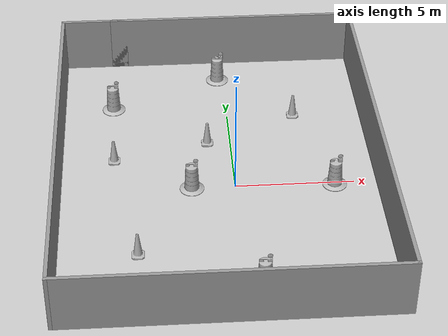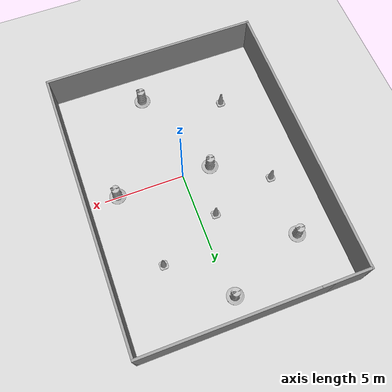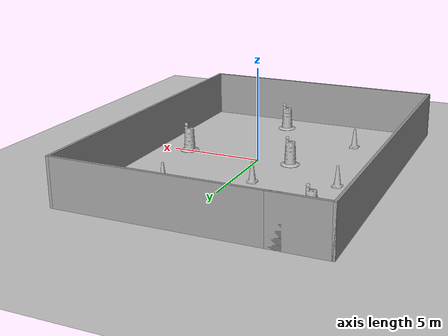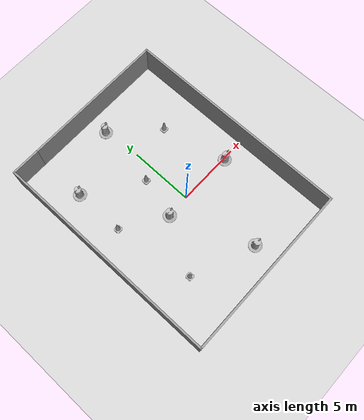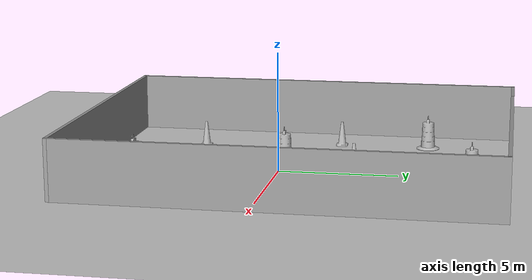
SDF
<sdf version="1.7">
 <world name="default">
  <light name="sun" type="directional">
   <pose>0 0 10 0 -0 0</pose>
   <diffuse>0.8 0.8 0.8 1</diffuse>
   <specular>0.2 0.2 0.2 1</specular>
   <attenuation>
    <range>1000</range>
    <constant>0.9</constant>
    <linear>0.01</linear>
    <quadratic>0.001</quadratic>
   </attenuation>
   <direction>-0.5 0.1 -0.9</direction>
   <spot><inner_angle>0</inner_angle><outer_angle>0</outer_angle><falloff>0</falloff></spot>
  </light>
  <model name="ground_plane">
   <static>1</static>
   <link name="link">
    <collision name="collision">
     <geometry><plane><normal>0 0 1</normal><size>100 100</size></plane></geometry>
     <surface><friction><ode><mu>100</mu><mu2>50</mu2></ode></friction></surface>
    </collision>
    <visual name="visual">
     <cast_shadows>0</cast_shadows>
     <geometry><plane><normal>0 0 1</normal><size>100 100</size></plane></geometry>
     <material>
      <script><uri>file://media/materials/scripts/gazebo.material</uri><name>Gazebo/Grey</name></script>
     </material>
    </visual>
   </link>
  </model>
  <gravity>0 0 -9.8</gravity>
  <magnetic_field>6e-06 2.3e-05 -4.2e-05</magnetic_field>
  <atmosphere type="adiabatic"/>
  <physics type="ode">
   <max_step_size>0.001</max_step_size>
   <real_time_factor>1</real_time_factor>
   <real_time_update_rate>1000</real_time_update_rate>
  </physics>
  <scene><ambient>0.4 0.4 0.4 1</ambient><background>0.7 0.7 0.7 1</background><shadows>1</shadows></scene>
  <audio><device>default</device></audio>
  <spherical_coordinates>
   <surface_model>EARTH_WGS84</surface_model>
   <latitude_deg>0</latitude_deg>
   <longitude_deg>0</longitude_deg>
   <elevation>0</elevation>
   <heading_deg>0</heading_deg>
  </spherical_coordinates>
  <model name="wall_1">
   <pose>-0.658111 0.853388 0 0 -0 0</pose>
   <link name="Wall_22">
    <collision name="Wall_22_Collision">
     <geometry><box><size>11.25 0.15 2.5</size></box></geometry>
     <pose>0 0 1.25 0 -0 0</pose>
    </collision>
    <visual name="Wall_22_Visual">
     <pose>0 0 1.25 0 -0 0</pose>
     <geometry><box><size>11.25 0.15 2.5</size></box></geometry>
     <material>
      <script><uri>file://media/materials/scripts/gazebo.material</uri><name>Gazebo/Grey</name></script>
      <ambient>1 1 1 1</ambient>
     </material>
     <meta><layer>0</layer></meta>
    </visual>
    <pose>1.125 8.675 0 0 -0 0</pose>
   </link>
   <link name="Wall_23">
    <collision name="Wall_23_Collision">
     <geometry><box><size>17.5 0.15 2.5</size></box></geometry>
     <pose>0 0 1.25 0 -0 0</pose>
    </collision>
    <visual name="Wall_23_Visual">
     <pose>0 0 1.25 0 -0 0</pose>
     <geometry><box><size>17.5 0.15 2.5</size></box></geometry>
     <material>
      <script><uri>file://media/materials/scripts/gazebo.material</uri><name>Gazebo/Grey</name></script>
      <ambient>1 1 1 1</ambient>
     </material>
     <meta><layer>0</layer></meta>
    </visual>
    <pose>6.675 -0 0 0 -0 -1.5708</pose>
   </link>
   <link name="Wall_24">
    <collision name="Wall_24_Collision">
     <geometry><box><size>13.5 0.15 2.5</size></box></geometry>
     <pose>0 0 1.25 0 -0 0</pose>
    </collision>
    <visual name="Wall_24_Visual">
     <pose>0 0 1.25 0 -0 0</pose>
     <geometry><box><size>13.5 0.15 2.5</size></box></geometry>
     <material>
      <script><uri>file://media/materials/scripts/gazebo.material</uri><name>Gazebo/Grey</name></script>
      <ambient>1 1 1 1</ambient>
     </material>
     <meta><layer>0</layer></meta>
    </visual>
    <pose>-0 -8.675 0 0 -0 3.14159</pose>
   </link>
   <link name="Wall_25">
    <collision name="Wall_25_Collision">
     <geometry><box><size>17.5 0.15 2.5</size></box></geometry>
     <pose>0 0 1.25 0 -0 0</pose>
    </collision>
    <visual name="Wall_25_Visual">
     <pose>0 0 1.25 0 -0 0</pose>
     <geometry><box><size>17.5 0.15 2.5</size></box></geometry>
     <material>
      <script><uri>file://media/materials/scripts/gazebo.material</uri><name>Gazebo/Grey</name></script>
      <ambient>1 1 1 1</ambient>
     </material>
     <meta><layer>0</layer></meta>
    </visual>
    <pose>-6.675 -0 0 0 -0 1.5708</pose>
   </link>
   <link name="Wall_26">
    <collision name="Wall_26_Collision">
     <geometry><box><size>3 0.15 2.5</size></box></geometry>
     <pose>0 0 1.25 0 -0 0</pose>
    </collision>
    <visual name="Wall_26_Visual">
     <pose>0 0 1.25 0 -0 0</pose>
     <geometry><box><size>3 0.15 2.5</size></box></geometry>
     <material>
      <script><uri>file://media/materials/scripts/gazebo.material</uri><name>Gazebo/Grey</name></script>
      <ambient>1 1 1 1</ambient>
     </material>
     <meta><layer>0</layer></meta>
    </visual>
    <pose>-5.25 8.675 0 0 -0 0</pose>
   </link>
   <static>1</static>
  </model>
  <model name="Construction Barrel">
   <link name="link">
    <inertial>
     <pose>0 0 0.4 0 -0 0</pose>
     <mass>500</mass>
     <inertia><ixx>51.2096</ixx><iyy>51.2096</iyy><izz>25</izz><ixy>0</ixy><ixz>0</ixz><iyz>0</iyz></inertia>
    </inertial>
    <collision name="collision">
     <geometry><mesh><uri>model://construction_barrel/meshes/construction_barrel.dae</uri></mesh></geometry>
    </collision>
    <visual name="visual">
     <geometry><mesh><uri>model://construction_barrel/meshes/construction_barrel.dae</uri></mesh></geometry>
    </visual>
   </link>
   <pose>-5.0858 5.86446 -1e-06 3e-06 7e-06 -1.5e-05</pose>
  </model>
  <model name="Construction Cone">
   <link name="link">
    <collision name="collision">
     <geometry>
      <mesh><scale>10 10 10</scale><uri>model://construction_cone/meshes/construction_cone.dae</uri></mesh>
     </geometry>
    </collision>
    <visual name="visual">
     <geometry>
      <mesh><scale>10 10 10</scale><uri>model://construction_cone/meshes/construction_cone.dae</uri></mesh>
     </geometry>
    </visual>
    <inertial>
     <inertia><ixx>1</ixx><ixy>0</ixy><ixz>0</ixz><iyy>1</iyy><iyz>0</iyz><izz>1</izz></inertia>
     <mass>1</mass>
    </inertial>
   </link>
   <pose>2.93606 4.9143 -0 0 -0 0</pose>
  </model>
  <model name="Construction Cone_0">
   <link name="link">
    <collision name="collision">
     <geometry>
      <mesh><scale>10 10 10</scale><uri>model://construction_cone/meshes/construction_cone.dae</uri></mesh>
     </geometry>
    </collision>
    <visual name="visual">
     <geometry>
      <mesh><scale>10 10 10</scale><uri>model://construction_cone/meshes/construction_cone.dae</uri></mesh>
     </geometry>
    </visual>
    <inertial>
     <inertia><ixx>1</ixx><ixy>0</ixy><ixz>0</ixz><iyy>1</iyy><iyz>0</iyz><izz>1</izz></inertia>
     <mass>1</mass>
    </inertial>
   </link>
   <pose>-4.10075 -4.05719 -0 0 -0 0</pose>
  </model>
  <model name="Construction Barrel_0">
   <link name="link">
    <inertial>
     <pose>0 0 0.4 0 -0 0</pose>
     <mass>500</mass>
     <inertia><ixx>51.2096</ixx><iyy>51.2096</iyy><izz>25</izz><ixy>0</ixy><ixz>0</ixz><iyz>0</iyz></inertia>
    </inertial>
    <collision name="collision">
     <geometry><mesh><uri>model://construction_barrel/meshes/construction_barrel.dae</uri></mesh></geometry>
    </collision>
    <visual name="visual">
     <geometry><mesh><uri>model://construction_barrel/meshes/construction_barrel.dae</uri></mesh></geometry>
    </visual>
   </link>
   <pose>-1.81391 -0.046429 -1e-06 0 5e-06 -1e-05</pose>
  </model>
  <model name="Construction Cone_1">
   <link name="link">
    <collision name="collision">
     <geometry>
      <mesh><scale>10 10 10</scale><uri>model://construction_cone/meshes/construction_cone.dae</uri></mesh>
     </geometry>
    </collision>
    <visual name="visual">
     <geometry>
      <mesh><scale>10 10 10</scale><uri>model://construction_cone/meshes/construction_cone.dae</uri></mesh>
     </geometry>
    </visual>
    <inertial>
     <inertia><ixx>1</ixx><ixy>0</ixy><ixz>0</ixz><iyy>1</iyy><iyz>0</iyz><izz>1</izz></inertia>
     <mass>1</mass>
    </inertial>
   </link>
   <pose>-5.05069 1.99414 -1e-06 4e-06 -0 0</pose>
  </model>
  <model name="Construction Barrel_1">
   <link name="link">
    <inertial>
     <pose>0 0 0.4 0 -0 0</pose>
     <mass>500</mass>
     <inertia><ixx>51.2096</ixx><iyy>51.2096</iyy><izz>25</izz><ixy>0</ixy><ixz>0</ixz><iyz>0</iyz></inertia>
    </inertial>
    <collision name="collision">
     <geometry><mesh><uri>model://construction_barrel/meshes/construction_barrel.dae</uri></mesh></geometry>
    </collision>
    <visual name="visual">
     <geometry><mesh><uri>model://construction_barrel/meshes/construction_barrel.dae</uri></mesh></geometry>
    </visual>
   </link>
   <pose>4.16756 -0.116764 -1e-06 3e-06 1e-05 -7e-06</pose>
  </model>
  <model name="Construction Barrel_2">
   <link name="link">
    <inertial>
     <pose>0 0 0.4 0 -0 0</pose>
     <mass>500</mass>
     <inertia><ixx>51.2096</ixx><iyy>51.2096</iyy><izz>25</izz><ixy>0</ixy><ixz>0</ixz><iyz>0</iyz></inertia>
    </inertial>
    <collision name="collision">
     <geometry><mesh><uri>model://construction_barrel/meshes/construction_barrel.dae</uri></mesh></geometry>
    </collision>
    <visual name="visual">
     <geometry><mesh><uri>model://construction_barrel/meshes/construction_barrel.dae</uri></mesh></geometry>
    </visual>
   </link>
   <pose>-0.26572 7.97537 1e-06 2e-06 3e-06 -6e-06</pose>
  </model>
  <model name="Construction Cone_2">
   <link name="link">
    <collision name="collision">
     <geometry>
      <mesh><scale>10 10 10</scale><uri>model://construction_cone/meshes/construction_cone.dae</uri></mesh>
     </geometry>
    </collision>
    <visual name="visual">
     <geometry>
      <mesh><scale>10 10 10</scale><uri>model://construction_cone/meshes/construction_cone.dae</uri></mesh>
     </geometry>
    </visual>
    <inertial>
     <inertia><ixx>1</ixx><ixy>0</ixy><ixz>0</ixz><iyy>1</iyy><iyz>0</iyz><izz>1</izz></inertia>
     <mass>1</mass>
    </inertial>
   </link>
   <pose>-1.00462 3.04971 -0 0 -0 0</pose>
  </model>
  <model name="Construction Barrel_3">
   <link name="link">
    <inertial>
     <pose>0 0 0.4 0 -0 0</pose>
     <mass>500</mass>
     <inertia><ixx>51.2096</ixx><iyy>51.2096</iyy><izz>25</izz><ixy>0</ixy><ixz>0</ixz><iyz>0</iyz></inertia>
    </inertial>
    <collision name="collision">
     <geometry><mesh><uri>model://construction_barrel/meshes/construction_barrel.dae</uri></mesh></geometry>
    </collision>
    <visual name="visual">
     <geometry><mesh><uri>model://construction_barrel/meshes/construction_barrel.dae</uri></mesh></geometry>
    </visual>
   </link>
   <pose>0.684231 -5.9926 -1e-06 3e-06 -2e-06 -2e-06</pose>
  </model>
 </world>
</sdf>
